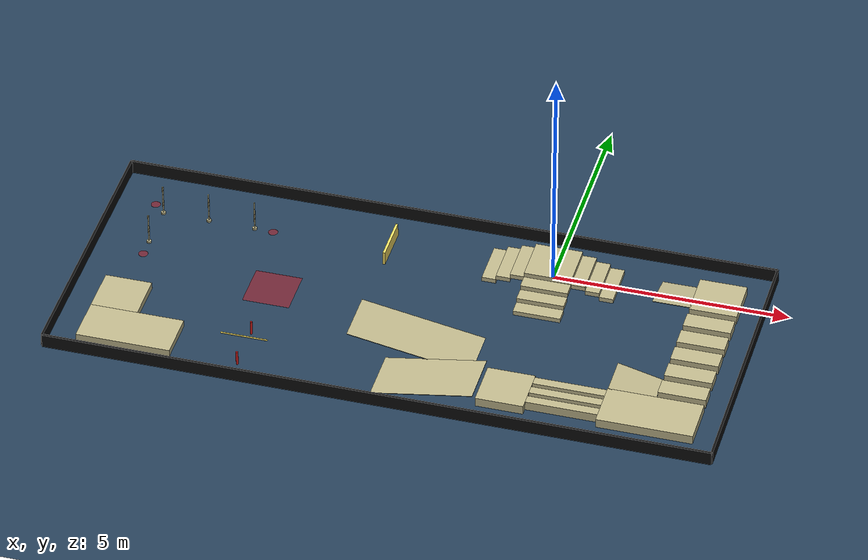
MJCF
<mujoco model="nav_tools terrain B_C">
  <statistic center="-5.5 -1.9 0.4" extent="5.0" />
  <visual>
    <headlight diffuse="0.6 0.6 0.6" ambient="0.3 0.3 0.3" specular="0 0 0" />
    <rgba haze="0.15 0.25 0.35 1" />
    <global azimuth="90" elevation="-20" />
  </visual>
  <asset>
    <texture type="skybox" builtin="gradient" rgb1="0.3 0.5 0.7" rgb2="0 0 0" width="512" height="3072" />
    <texture type="2d" name="groundplane" builtin="checker" mark="edge" rgb1="0.2 0.3 0.4" rgb2="0.1 0.2 0.3" markrgb="0.8 0.8 0.8" width="300" height="300" />
    <material name="groundplane" texture="groundplane" texuniform="true" texrepeat="5 5" reflectance="0.2" />
  </asset>
  <worldbody>
    <!-- 比赛地图基准地面。 -->
    <geom name="floor" size="0 0 0.05" type="plane" material="groundplane" />
    <!-- 14m x 6m outer boundary, mirrored from A_C across the x axis. -->
    <geom name="border_x_min" pos="-9.5 -1.9 0.15" type="box" size="0.025 3.0 0.15" rgba="0.05 0.05 0.05 1" />
    <geom name="border_x_max" pos="4.5 -1.9 0.15" type="box" size="0.025 3.0 0.15" rgba="0.05 0.05 0.05 1" />
    <geom name="border_y_min" pos="-2.5 -4.9 0.15" type="box" size="7.0 0.025 0.15" rgba="0.05 0.05 0.05 1" />
    <geom name="border_y_max" pos="-2.5 1.1 0.15" type="box" size="7.0 0.025 0.15" rgba="0.05 0.05 0.05 1" />
    <!-- 高墙：机器人需从上方跃过或攀爬通过，自动/遥控均可计分。 -->
    <geom pos="-3.5 0 0.15" type="box" size="0.025 0.5 0.15" quat="1 0 0 0" rgba="1.0 0.9 0.4 1.0" />
    <!-- 砂砾碎木坑：L 形障碍，需从 1m 短边进入或离开，完整通过才计分。 -->
    <geom pos="-8.4 -3.0361 0.075" type="box" size="0.5 0.5 0.075" quat="0.707107 0 0 0.707107" rgba="0.75 0.72 0.55 1.0" />
    <geom pos="-7.9 -4.0361 0.075" type="box" size="0.5 1.0 0.075" quat="0.707107 0 0 0.707107" rgba="0.75 0.72 0.55 1.0" />
    <!-- 限高杆：机器人需从横杆下方通过，碰落横杆则越障失败。 -->
    <geom pos="-5.5 -4.4 0.155" type="cylinder" size="0.025 0.155" quat="0.707107 0 0 -0.707107" rgba="0.8 0.1 0.1 1.0" />
    <geom pos="-5.5 -3.4 0.155" type="cylinder" size="0.025 0.155" quat="0.707107 0 0 -0.707107" rgba="0.8 0.1 0.1 1.0" />
    <geom pos="-5.5 -3.9 0.325" type="cylinder" size="0.015 0.5" quat="0.5 0.5 -0.5 -0.5" rgba="1.0 0.9 0.4 1.0" />
    <!-- 启动区：规则允许地面和 T 字形台阶上各一个启动区，机器人需完全纳入启动区后开始。 -->
    <geom pos="-5.5 -1.9 0" type="box" size="0.5 0.5 0.001" rgba="1.0 0.0 0.0 0.35" contype="0" conaffinity="0" />
    <!-- T 字形台阶：可选启动区之一在最高平台；通过时每一级台阶顶面需至少接触一次。 -->
    <geom pos="-1.25 0 0.05" type="box" size="0.15 0.5 0.05" quat="1 0 0 0" rgba="0.75 0.72 0.55 1.0" />
    <geom pos="-0.95 0 0.15" type="box" size="0.15 0.5 0.05" quat="1 0 0 0" rgba="0.75 0.72 0.55 1.0" />
    <geom pos="-0.65 0 0.25" type="box" size="0.15 0.5 0.05" quat="1 0 0 0" rgba="0.75 0.72 0.55 1.0" />
    <geom pos="0 0 0.35" type="box" size="0.5 0.5 0.05" quat="1 0 0 0" rgba="0.75 0.72 0.55 1.0" />
    <geom pos="0.65 0 0.25" type="box" size="0.15 0.5 0.05" quat="1 0 0 0" rgba="0.75 0.72 0.55 1.0" />
    <geom pos="0.95 0 0.15" type="box" size="0.15 0.5 0.05" quat="1 0 0 0" rgba="0.75 0.72 0.55 1.0" />
    <geom pos="1.25 0 0.05" type="box" size="0.15 0.5 0.05" quat="1 0 0 0" rgba="0.75 0.72 0.55 1.0" />
    <geom pos="0 -0.65 0.25" type="box" size="0.15 0.5 0.05" quat="0.707107 0 0 -0.707107" rgba="0.75 0.72 0.55 1.0" />
    <geom pos="0 -0.95 0.15" type="box" size="0.15 0.5 0.05" quat="0.707107 0 0 -0.707107" rgba="0.75 0.72 0.55 1.0" />
    <geom pos="0 -1.25 0.05" type="box" size="0.15 0.5 0.05" quat="0.707107 0 0 -0.707107" rgba="0.75 0.72 0.55 1.0" />
    <!-- 大斜坡、木桥 A / 木桥 B：大斜坡需满足长边行走距离要求；木桥需从一侧平台经木桥到达另一侧平台。 -->
    <geom pos="2.62 0 0.1" type="box" size="0.40 0.5 0.005" quat="0.992546 -0.12187 0 0" rgba="0.75 0.72 0.55 1.0" />
    <geom pos="3.5 0 0.1" type="box" size="0.5 0.5 0.10" quat="0.707107 0 0 -0.707107" rgba="0.75 0.72 0.55 1.0" />
    <geom pos="3.5 -0.85 0.1" type="box" size="0.2 0.5 0.10" quat="0.707107 0 0 -0.707107" rgba="0.75 0.72 0.55 1.0" />
    <geom pos="3.5 -1.4 0.1" type="box" size="0.2 0.5 0.10" quat="0.707107 0 0 -0.707107" rgba="0.75 0.72 0.55 1.0" />
    <geom pos="3.5 -1.95 0.1" type="box" size="0.2 0.5 0.10" quat="0.707107 0 0 -0.707107" rgba="0.75 0.72 0.55 1.0" />
    <geom pos="3.5 -2.5 0.1" type="box" size="0.2 0.5 0.10" quat="0.707107 0 0 -0.707107" rgba="0.75 0.72 0.55 1.0" />
    <geom pos="3.5 -3.05 0.1" type="box" size="0.2 0.5 0.10" quat="0.707107 0 0 -0.707107" rgba="0.75 0.72 0.55 1.0" />
    <geom pos="3 -3.9 0.1" type="box" size="0.5 1.0 0.10" quat="0.707107 0 0 -0.707107" rgba="0.75 0.72 0.55 1.0" />
    <geom pos="2.5 -3.0002 0.0951" type="box" size="0.4133 0.5 0.005" quat="0.701836 -0.086174 0.086174 -0.701836" rgba="0.75 0.72 0.55 1.0" />
    <geom pos="1.25 -3.55 0.1" type="box" size="0.1 0.75 0.10" quat="0.707107 0 0 -0.707107" rgba="0.75 0.72 0.55 1.0" />
    <geom pos="1.25 -3.85 0.1" type="box" size="0.1 0.75 0.10" quat="0.707107 0 0 -0.707107" rgba="0.75 0.72 0.55 1.0" />
    <geom pos="1.25 -4.15 0.1" type="box" size="0.1 0.75 0.10" quat="0.707107 0 0 -0.707107" rgba="0.75 0.72 0.55 1.0" />
    <geom pos="0 -3.9 0.1" type="box" size="0.5 0.5 0.10" quat="0.707107 0 0 -0.707107" rgba="0.75 0.72 0.55 1.0" />
    <geom pos="-1.5 -2.8338 0.0951" type="box" size="0.5759 2.0 0.005" quat="0.704416 -0.061629 0.061629 -0.704416" rgba="0.75 0.72 0.55 1.0" />
    <geom pos="-2 -3.9681 0.0951" type="box" size="0.5759 1.5 0.005" quat="0.704416 0.061629 -0.061629 -0.704416" rgba="0.75 0.72 0.55 1.0" />
    <!-- 直角绕杆：需按 S 形绕过竖杆，并经过两端及拐角必达区。 -->
    <geom pos="-6.025 -0.0861 0" type="cylinder" size="0.1 0.001" rgba="1.0 0.0 0.0 0.35" contype="0" conaffinity="0" />
    <geom pos="-8.425 -1.4861 0" type="cylinder" size="0.1 0.001" rgba="1.0 0.0 0.0 0.35" contype="0" conaffinity="0" />
    <geom pos="-8.675 0.1639 0" type="cylinder" size="0.1 0.001" rgba="1.0 0.0 0.0 0.35" contype="0" conaffinity="0" />
    <geom pos="-6.425 -0.0861 0.02" type="cylinder" size="0.05 0.02" quat="0.707107 0 0 -0.707107" rgba="0.75 0.72 0.55 1.0" />
    <geom pos="-6.425 -0.0861 0.37" type="cylinder" size="0.015 0.33" quat="0.707107 0 0 -0.707107" rgba="0.75 0.72 0.55 1.0" />
    <geom pos="-7.425 -0.0861 0.02" type="cylinder" size="0.05 0.02" quat="0.707107 0 0 -0.707107" rgba="0.75 0.72 0.55 1.0" />
    <geom pos="-7.425 -0.0861 0.37" type="cylinder" size="0.015 0.33" quat="0.707107 0 0 -0.707107" rgba="0.75 0.72 0.55 1.0" />
    <geom pos="-8.425 -0.0861 0.02" type="cylinder" size="0.05 0.02" quat="0.707107 0 0 -0.707107" rgba="0.75 0.72 0.55 1.0" />
    <geom pos="-8.425 -0.0861 0.37" type="cylinder" size="0.015 0.33" quat="0.707107 0 0 -0.707107" rgba="0.75 0.72 0.55 1.0" />
    <geom pos="-8.425 -1.0861 0.02" type="cylinder" size="0.05 0.02" quat="0.707107 0 0 -0.707107" rgba="0.75 0.72 0.55 1.0" />
    <geom pos="-8.425 -1.0861 0.37" type="cylinder" size="0.015 0.33" quat="0.707107 0 0 -0.707107" rgba="0.75 0.72 0.55 1.0" />
  </worldbody>
</mujoco>
